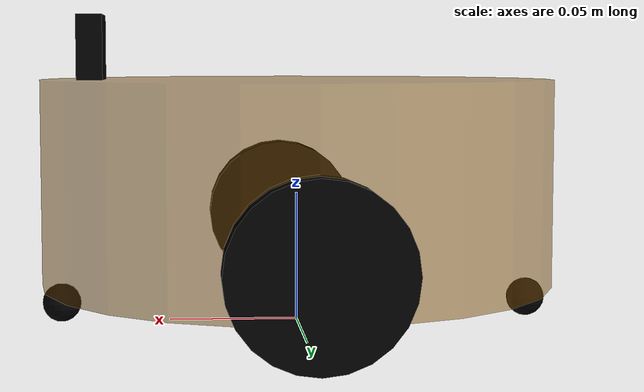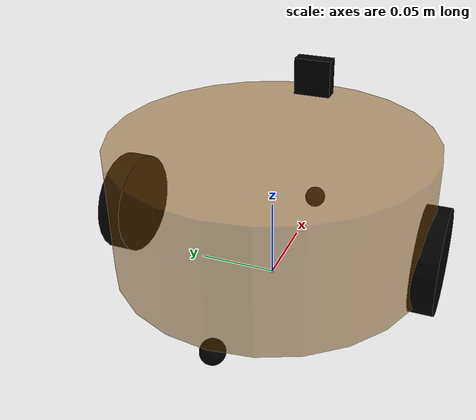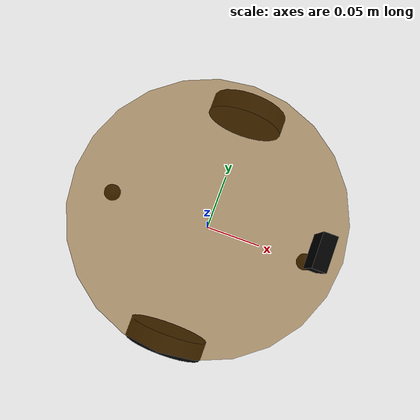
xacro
<?xml version="1.0"?>
<!-- 根标签，必须声明 xmlns:xacro -->
<robot name="irobot_gazebo" xmlns:xacro="http://www.ros.org/wiki/xacro">
    <!-- 封装变量、常量 -->
    <xacro:macro name="sphere_inertial_matrix" params="m r">
        <inertial>
            <mass value="${m}" />
            <inertia ixx="${2*m*r*r/5}" ixy="0" ixz="0"
                iyy="${2*m*r*r/5}" iyz="0"
                izz="${2*m*r*r/5}" />
        </inertial>
    </xacro:macro>

    <xacro:macro name="cylinder_inertial_matrix" params="m r h">
        <inertial>
            <mass value="${m}" />
            <inertia ixx="${m*(3*r*r+h*h)/12}" ixy = "0" ixz = "0"
                iyy="${m*(3*r*r+h*h)/12}" iyz = "0"
                izz="${m*r*r/2}" />
        </inertial>
    </xacro:macro>

    <xacro:macro name="Box_inertial_matrix" params="m l w h">
       <inertial>
               <mass value="${m}" />
               <inertia ixx="${m*(h*h + l*l)/12}" ixy = "0" ixz = "0"
                   iyy="${m*(w*w + l*l)/12}" iyz= "0"
                   izz="${m*(w*w + h*h)/12}" />
       </inertial>
   </xacro:macro>
    <!-- PI 值设置精度需要高一些，否则后续车轮翻转量计算时，可能会出现肉眼不能察觉的车轮倾斜，从而导致模型抖动 -->
    <xacro:property name="PI" value="3.1415926"/>
    <!-- 宏:黑色设置 -->
    <material name="black">
        <color rgba="0.0 0.0 0.0 1.0" />
    </material>
    <!-- 底盘属性 -->
    <xacro:property name="base_footprint_radius" value="0.001" /> <!-- base_footprint 半径  -->
    <xacro:property name="base_link_radius" value="0.1" /> <!-- base_link 半径 -->
    <xacro:property name="base_link_length" value="0.08" /> <!-- base_link 长 -->
    <xacro:property name="earth_space" value="0.015" /> <!-- 离地间距 -->
    <xacro:property name="base_link_m" value="0.5" /> <!-- 质量  -->

    <!-- 底盘 -->
    <link name="base_footprint">
      <visual>
        <geometry>
          <sphere radius="${base_footprint_radius}" />
        </geometry>
      </visual>
    </link>

    <link name="base_link">
      <visual>
        <geometry>
          <cylinder radius="${base_link_radius}" length="${base_link_length}" />
        </geometry>
        <origin xyz="0 0 0" rpy="0 0 0" />
        <material name="yellow">
          <color rgba="0.5 0.3 0.0 0.5" />
        </material>
      </visual>
      <collision>
        <geometry>
          <cylinder radius="${base_link_radius}" length="${base_link_length}" />
        </geometry>
        <origin xyz="0 0 0" rpy="0 0 0" />
      </collision>
      <xacro:cylinder_inertial_matrix m="${base_link_m}" r="${base_link_radius}" h="${base_link_length}" />

    </link>

    <joint name="base_link2base_footprint" type="fixed">
      <parent link="base_footprint" />
      <child link="base_link" />
      <origin xyz="0 0 ${earth_space + base_link_length / 2 }" />
    </joint>
    <gazebo reference="base_link">
        <material>Gazebo/Yellow</material>
    </gazebo>

    <!-- 驱动轮 -->
    <!-- 驱动轮属性 -->
    <xacro:property name="wheel_radius" value="0.0325" /><!-- 半径 -->
    <xacro:property name="wheel_length" value="0.015" /><!-- 宽度 -->
    <xacro:property name="wheel_m" value="0.05" /> <!-- 质量  -->

    <!-- 驱动轮宏实现 -->
    <xacro:macro name="add_wheels" params="name flag">
      <link name="${name}_wheel">
        <visual>
          <geometry>
            <cylinder radius="${wheel_radius}" length="${wheel_length}" />
          </geometry>
          <origin xyz="0.0 0.0 0.0" rpy="${PI / 2} 0.0 0.0" />
          <material name="black" />
        </visual>
        <collision>
          <geometry>
            <cylinder radius="${wheel_radius}" length="${wheel_length}" />
          </geometry>
          <origin xyz="0.0 0.0 0.0" rpy="${PI / 2} 0.0 0.0" />
        </collision>
        <xacro:cylinder_inertial_matrix m="${wheel_m}" r="${wheel_radius}" h="${wheel_length}" />

      </link>

      <joint name="${name}_wheel2base_link" type="continuous">
        <parent link="base_link" />
        <child link="${name}_wheel" />
        <origin xyz="0 ${flag * base_link_radius} ${-(earth_space + base_link_length / 2 - wheel_radius) }" />
        <axis xyz="0 1 0" />
      </joint>
      <gazebo reference="${name}_wheel">
        <material>Gazebo/Red</material>
      </gazebo>

    </xacro:macro>

    <xacro:add_wheels name="left" flag="1" />
    <xacro:add_wheels name="right" flag="-1" />
    <!-- 支撑轮 -->
    <!-- 支撑轮属性 -->
   <xacro:property name="support_wheel_radius" value="0.0075" /> <!-- 支撑轮半径 -->
    <xacro:property name="support_wheel_m" value="0.03" /> <!-- 质量  -->

    <!-- 支撑轮宏 -->
    <xacro:macro name="add_support_wheel" params="name flag" >
      <link name="${name}_wheel">
        <visual>
            <geometry>
                <sphere radius="${support_wheel_radius}" />
            </geometry>
            <origin xyz="0 0 0" rpy="0 0 0" />
            <material name="black" />
        </visual>
        <collision>
            <geometry>
                <sphere radius="${support_wheel_radius}" />
            </geometry>
            <origin xyz="0 0 0" rpy="0 0 0" />
        </collision>
        <xacro:sphere_inertial_matrix m="${support_wheel_m}" r="${support_wheel_radius}" />
      </link>

      <joint name="${name}_wheel2base_link" type="continuous">
          <parent link="base_link" />
          <child link="${name}_wheel" />
          <origin xyz="${flag * (base_link_radius - support_wheel_radius)} 0 ${-(base_link_length / 2 + earth_space / 2)}" />
          <axis xyz="1 1 1" />
      </joint>
      <gazebo reference="${name}_wheel">
        <material>Gazebo/Red</material>
      </gazebo>
    </xacro:macro>

    <xacro:add_support_wheel name="front" flag="1" />
    <xacro:add_support_wheel name="back" flag="-1" />

    <xacro:property name="camera_length" value="0.01" /> <!-- 摄像头长度(x) -->
    <xacro:property name="camera_width" value="0.025" /> <!-- 摄像头宽度(y) -->
    <xacro:property name="camera_height" value="0.025" /> <!-- 摄像头高度(z) -->
    <xacro:property name="camera_x" value="0.08" /> <!-- 摄像头安装的x坐标 -->
    <xacro:property name="camera_y" value="0.0" /> <!-- 摄像头安装的y坐标 -->
    <xacro:property name="camera_z" value="${base_link_length / 2 + camera_height / 2}" /> <!-- 摄像头安装的z坐标:底盘高度 / 2 + 摄像头高度 / 2  -->

    <xacro:property name="camera_m" value="0.01" /> <!-- 摄像头质量 -->

    <!-- 摄像头关节以及link -->
    <link name="camera">
        <visual>
            <geometry>
                <box size="${camera_length} ${camera_width} ${camera_height}" />
            </geometry>
            <origin xyz="0.0 0.0 0.0" rpy="0.0 0.0 0.0" />
            <material name="black" />
        </visual>
        <collision>
            <geometry>
                <box size="${camera_length} ${camera_width} ${camera_height}" />
            </geometry>
            <origin xyz="0.0 0.0 0.0" rpy="0.0 0.0 0.0" />
        </collision>
        <xacro:Box_inertial_matrix m="${camera_m}" l="${camera_length}" w="${camera_width}" h="${camera_height}" />
    </link>

    <joint name="camera2base_link" type="fixed">
        <parent link="base_link" />
        <child link="camera" />
        <origin xyz="${camera_x} ${camera_y} ${camera_z}" />
    </joint>
    <gazebo reference="camera">
        <material>Gazebo/Blue</material>
    </gazebo>

    <!-- 传动实现:用于连接控制器与关节 -->
    <xacro:macro name="joint_trans" params="joint_name">
        <!-- Transmission is important to link the joints and the controller -->
        <transmission name="${joint_name}_trans">
            <type>transmission_interface/SimpleTransmission</type>
            <joint name="${joint_name}">
                <hardwareInterface>hardware_interface/VelocityJointInterface</hardwareInterface>
            </joint>
            <actuator name="${joint_name}_motor">
                <hardwareInterface>hardware_interface/VelocityJointInterface</hardwareInterface>
                <mechanicalReduction>1</mechanicalReduction>
            </actuator>
        </transmission>
    </xacro:macro>

  <gazebo reference="camera">
    <!-- 类型设置为 camara -->
    <sensor type="camera" name="camera_node">
      <update_rate>30.0</update_rate> <!-- 更新频率 -->
      <!-- 摄像头基本信息设置 -->
      <camera name="head">
        <horizontal_fov>1.3962634</horizontal_fov>
        <image>
          <width>1280</width>
          <height>720</height>
          <format>R8G8B8</format>
        </image>
        <clip>
          <near>0.02</near>
          <far>300</far>
        </clip>
        <noise>
          <type>gaussian</type>
          <mean>0.0</mean>
          <stddev>0.007</stddev>
        </noise>
      </camera>
      <!-- 核心插件 -->
      <plugin name="gazebo_camera" filename="libgazebo_ros_camera.so">
        <alwaysOn>true</alwaysOn>
        <updateRate>0.0</updateRate>
        <cameraName>/camera</cameraName>
        <imageTopicName>image_raw</imageTopicName>
        <cameraInfoTopicName>camera_info</cameraInfoTopicName>
        <frameName>camera</frameName>
        <hackBaseline>0.07</hackBaseline>
        <distortionK1>0.0</distortionK1>
        <distortionK2>0.0</distortionK2>
        <distortionK3>0.0</distortionK3>
        <distortionT1>0.0</distortionT1>
        <distortionT2>0.0</distortionT2>
      </plugin>
    </sensor>
  </gazebo>

    <!-- 每一个驱动轮都需要配置传动装置 -->
    <xacro:joint_trans joint_name="left_wheel2base_link" />
    <xacro:joint_trans joint_name="right_wheel2base_link" />

    <!-- 控制器 -->
    <gazebo>
        <plugin name="differential_drive_controller" filename="libgazebo_ros_diff_drive.so">
            <rosDebugLevel>Debug</rosDebugLevel>
            <publishWheelTF>true</publishWheelTF>
            <robotNamespace>/</robotNamespace>
            <publishTf>1</publishTf>
            <publishWheelJointState>true</publishWheelJointState>
            <alwaysOn>true</alwaysOn>
            <updateRate>100.0</updateRate>
            <legacyMode>true</legacyMode>
            <leftJoint>left_wheel2base_link</leftJoint> <!-- 左轮 -->
            <rightJoint>right_wheel2base_link</rightJoint> <!-- 右轮 -->
            <wheelSeparation>${base_link_radius * 2}</wheelSeparation> <!-- 车轮间距 -->
            <wheelDiameter>${wheel_radius * 2}</wheelDiameter> <!-- 车轮直径 -->
            <broadcastTF>1</broadcastTF>
            <wheelTorque>30</wheelTorque>
            <wheelAcceleration>1.8</wheelAcceleration>
            <commandTopic>cmd_vel</commandTopic> <!-- 运动控制话题 -->
            <odometryFrame>odom</odometryFrame>
            <odometryTopic>odom</odometryTopic> <!-- 里程计话题 -->
            <robotBaseFrame>base_footprint</robotBaseFrame> <!-- 根坐标系 -->
        </plugin>
    </gazebo>

</robot>
